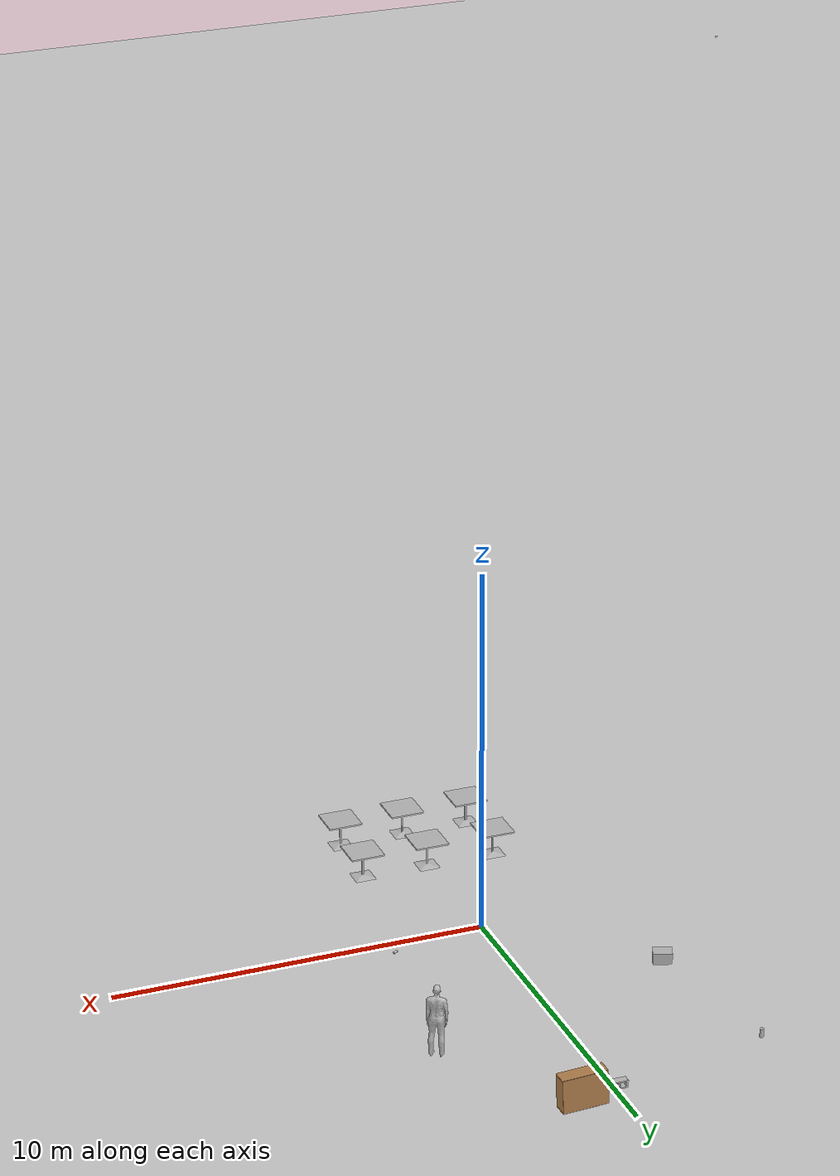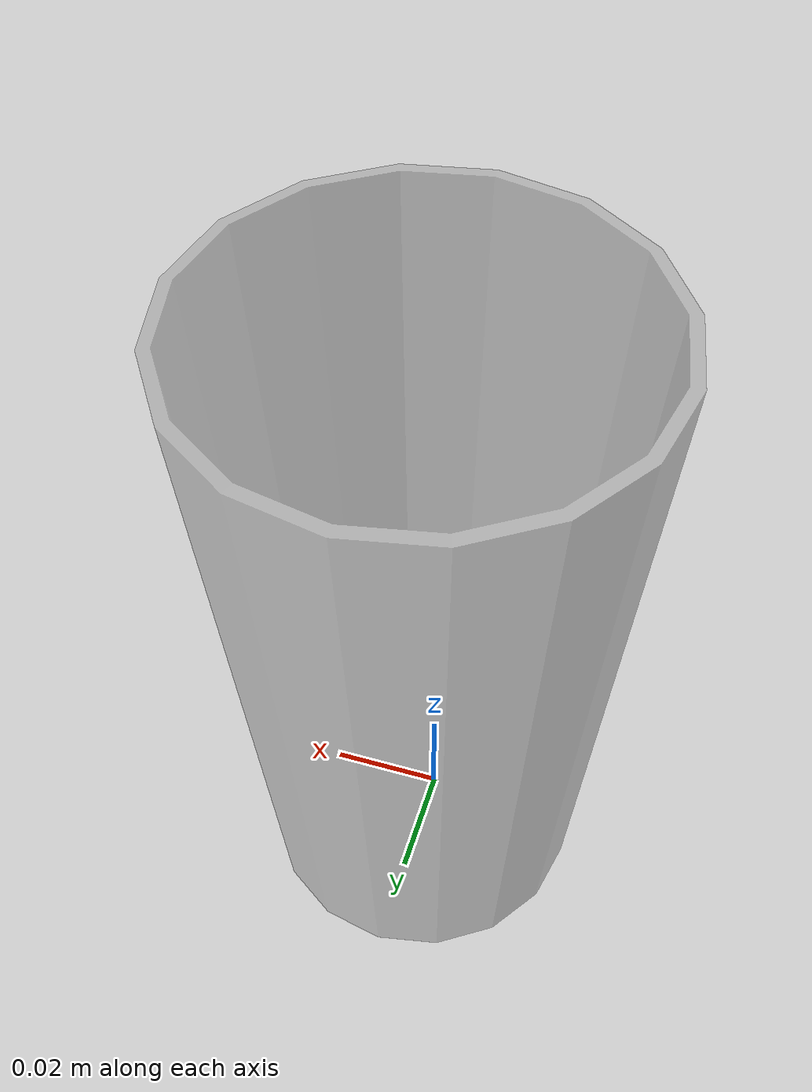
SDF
<sdf version="1.6">
 <world name="default">
  <light name="sun" type="directional">
   <pose>0 0 15 0 -0 0</pose>
   <diffuse>0.8 0.8 0.8 1</diffuse>
   <specular>0.2 0.2 0.2 1</specular>
   <attenuation>
    <range>1000</range>
    <constant>0.9</constant>
    <linear>0.01</linear>
    <quadratic>0.001</quadratic>
   </attenuation>
   <direction>-0.5 0.1 -0.9</direction>
  </light>
  <model name="ground_plane">
   <static>1</static>
   <link name="link">
    <collision name="collision">
     <geometry><plane><normal>0 0 1</normal><size>100 100</size></plane></geometry>
     <surface><friction><ode><mu>100</mu><mu2>50</mu2></ode></friction></surface>
    </collision>
    <visual name="visual">
     <transparency>1</transparency>
     <cast_shadows>0</cast_shadows>
     <geometry><plane><normal>0 0 1</normal><size>100 100</size></plane></geometry>
     <material>
      <script><uri>file://media/materials/scripts/gazebo.material</uri><name>Gazebo/Grey</name></script>
     </material>
    </visual>
   </link>
  </model>
  <gravity>0 0 -9.8</gravity>
  <magnetic_field>6e-06 2.3e-05 -4.2e-05</magnetic_field>
  <atmosphere type="adiabatic"/>
  <physics name="default_physics" default="0" type="ode">
   <max_step_size>0.001</max_step_size>
   <real_time_factor>1</real_time_factor>
   <real_time_update_rate>1000</real_time_update_rate>
  </physics>
  <scene><ambient>0.4 0.4 0.4 1</ambient><background>0.7 0.7 0.7 1</background><shadows>1</shadows></scene>
  <audio><device>default</device></audio>
  <spherical_coordinates>
   <surface_model>EARTH_WGS84</surface_model>
   <latitude_deg>0</latitude_deg>
   <longitude_deg>0</longitude_deg>
   <elevation>0</elevation>
   <heading_deg>0</heading_deg>
  </spherical_coordinates>
  <model name="beer">
   <link name="link">
    <pose>0 0 0.115 0 -0 0</pose>
    <inertial>
     <mass>0.39</mass>
     <inertia><ixx>0.00058</ixx><ixy>0</ixy><ixz>0</ixz><iyy>0.00058</iyy><iyz>0</iyz><izz>0.00019</izz></inertia>
    </inertial>
    <collision name="collision">
     <geometry><cylinder><radius>0.055</radius><length>0.23</length></cylinder></geometry>
    </collision>
    <visual name="visual">
     <geometry><cylinder><radius>0.055</radius><length>0.23</length></cylinder></geometry>
     <material>
      <script>
       <uri>model://beer/materials/scripts</uri>
       <uri>model://beer/materials/textures</uri>
       <name>Beer/Diffuse</name>
      </script>
     </material>
    </visual>
   </link>
   <pose>-4.3036 7.81842 0.087671 2.8e-05 0.000106 -0.175584</pose>
  </model>
  <model name="cardboard_box">
   <pose>-3.55714 3.43937 0.236665 0 0 -0.360823</pose>
   <link name="link">
    <inertial>
     <mass>2</mass>
     <inertia>
      <ixx>0.0416667</ixx>
      <ixy>0</ixy>
      <ixz>0</ixz>
      <iyy>0.0566667</iyy>
      <iyz>0</iyz>
      <izz>0.0683333</izz>
     </inertia>
    </inertial>
    <collision name="collision">
     <geometry><box><size>0.5 0.4 0.3</size></box></geometry>
     <surface>
      <friction><ode><mu>1</mu><mu2>1</mu2></ode></friction>
      <contact><ode><kp>1e+07</kp><kd>1</kd><min_depth>0.001</min_depth><max_vel>0.1</max_vel></ode></contact>
     </surface>
    </collision>
    <visual name="visual">
     <pose>0 0 -0.15 0 -0 0</pose>
     <geometry>
      <mesh><uri>model://cardboard_box/meshes/cardboard_box.dae</uri><scale>1.25932 1.00745 0.755591</scale></mesh>
     </geometry>
    </visual>
   </link>
  </model>
  <model name="cinder_block">
   <link name="link">
    <inertial>
     <pose>0 0 0.1016 0 -0 0</pose>
     <mass>5</mass>
     <inertia>
      <ixx>0.028705</ixx>
      <ixy>0</ixy>
      <iyy>0.073708</iyy>
      <ixz>0</ixz>
      <iyz>0</iyz>
      <izz>0.06908</izz>
     </inertia>
    </inertial>
    <visual name="visual">
     <geometry><mesh><uri>model://cinder_block/meshes/cinder_block.dae</uri></mesh></geometry>
    </visual>
    <collision name="left">
     <pose>0 -0.08465 0.1016 0 -0 0</pose>
     <geometry><box><size>0.43495 0.0339 0.2032</size></box></geometry>
     <surface>
      <contact><ode><max_vel>0.1</max_vel><min_depth>0.001</min_depth></ode></contact>
      <friction><ode><mu>1</mu><mu2>1</mu2></ode></friction>
     </surface>
    </collision>
    <collision name="right">
     <pose>0 0.08465 0.1016 0 -0 0</pose>
     <geometry><box><size>0.43495 0.0339 0.2032</size></box></geometry>
     <surface>
      <contact><ode><max_vel>0.1</max_vel><min_depth>0.001</min_depth></ode></contact>
      <friction><ode><mu>1</mu><mu2>1</mu2></ode></friction>
     </surface>
    </collision>
    <collision name="front">
     <pose>0.18625 0 0.1016 0 -0 0</pose>
     <geometry><box><size>0.0339 0.1354 0.203</size></box></geometry>
     <surface>
      <contact><ode><max_vel>0.1</max_vel><min_depth>0.001</min_depth></ode></contact>
      <friction><ode><mu>1</mu><mu2>1</mu2></ode></friction>
     </surface>
    </collision>
    <collision name="middle">
     <pose>0 0 0.1016 0 -0 0</pose>
     <geometry><box><size>0.0339 0.1354 0.203</size></box></geometry>
     <surface>
      <contact><ode><max_vel>0.1</max_vel><min_depth>0.001</min_depth></ode></contact>
      <friction><ode><mu>1</mu><mu2>1</mu2></ode></friction>
     </surface>
    </collision>
    <collision name="back">
     <pose>-0.18625 0 0.1016 0 -0 0</pose>
     <geometry><box><size>0.0339 0.1354 0.203</size></box></geometry>
     <surface>
      <contact><ode><max_vel>0.1</max_vel><min_depth>0.001</min_depth></ode></contact>
      <friction><ode><mu>1</mu><mu2>1</mu2></ode></friction>
     </surface>
    </collision>
   </link>
   <pose>-0.072492 8.83217 0.188279 1.5706 -0 -4e-06</pose>
  </model>
  <model name="cafe_table">
   <static>1</static>
   <link name="link">
    <collision name="surface">
     <pose>0 0 0.755 0 -0 0</pose>
     <geometry><box><size>0.913 0.913 0.04</size></box></geometry>
    </collision>
    <collision name="column">
     <pose>0 0 0.37 0 -0 0</pose>
     <geometry><box><size>0.042 0.042 0.74</size></box></geometry>
    </collision>
    <collision name="base">
     <pose>0 0 0.02 0 -0 0</pose>
     <geometry><box><size>0.56 0.56 0.04</size></box></geometry>
    </collision>
    <visual name="visual">
     <geometry><mesh><uri>model://cafe_table/meshes/cafe_table.dae</uri></mesh></geometry>
    </visual>
   </link>
   <pose>-1.75721 -3.68952 0 0 -0 0</pose>
  </model>
  <model name="cafe_table_clone">
   <static>1</static>
   <link name="link">
    <collision name="surface">
     <pose>0 0 0.755 0 -0 0</pose>
     <geometry><box><size>0.913 0.913 0.04</size></box></geometry>
    </collision>
    <collision name="column">
     <pose>0 0 0.37 0 -0 0</pose>
     <geometry><box><size>0.042 0.042 0.74</size></box></geometry>
    </collision>
    <collision name="base">
     <pose>0 0 0.02 0 -0 0</pose>
     <geometry><box><size>0.56 0.56 0.04</size></box></geometry>
    </collision>
    <visual name="visual">
     <geometry><mesh><uri>model://cafe_table/meshes/cafe_table.dae</uri></mesh></geometry>
    </visual>
   </link>
   <pose>-1.74835 -5.63814 0 0 -0 0</pose>
  </model>
  <model name="cafe_table_clone_0">
   <static>1</static>
   <link name="link">
    <collision name="surface">
     <pose>0 0 0.755 0 -0 0</pose>
     <geometry><box><size>0.913 0.913 0.04</size></box></geometry>
    </collision>
    <collision name="column">
     <pose>0 0 0.37 0 -0 0</pose>
     <geometry><box><size>0.042 0.042 0.74</size></box></geometry>
    </collision>
    <collision name="base">
     <pose>0 0 0.02 0 -0 0</pose>
     <geometry><box><size>0.56 0.56 0.04</size></box></geometry>
    </collision>
    <visual name="visual">
     <geometry><mesh><uri>model://cafe_table/meshes/cafe_table.dae</uri></mesh></geometry>
    </visual>
   </link>
   <pose>0.109431 -3.69878 0 0 -0 0</pose>
  </model>
  <model name="cafe_table_clone_1">
   <static>1</static>
   <link name="link">
    <collision name="surface">
     <pose>0 0 0.755 0 -0 0</pose>
     <geometry><box><size>0.913 0.913 0.04</size></box></geometry>
    </collision>
    <collision name="column">
     <pose>0 0 0.37 0 -0 0</pose>
     <geometry><box><size>0.042 0.042 0.74</size></box></geometry>
    </collision>
    <collision name="base">
     <pose>0 0 0.02 0 -0 0</pose>
     <geometry><box><size>0.56 0.56 0.04</size></box></geometry>
    </collision>
    <visual name="visual">
     <geometry><mesh><uri>model://cafe_table/meshes/cafe_table.dae</uri></mesh></geometry>
    </visual>
   </link>
   <pose>0.080445 -5.63415 0 0 -0 0</pose>
  </model>
  <model name="cafe_table_clone_2">
   <static>1</static>
   <link name="link">
    <collision name="surface">
     <pose>0 0 0.755 0 -0 0</pose>
     <geometry><box><size>0.913 0.913 0.04</size></box></geometry>
    </collision>
    <collision name="column">
     <pose>0 0 0.37 0 -0 0</pose>
     <geometry><box><size>0.042 0.042 0.74</size></box></geometry>
    </collision>
    <collision name="base">
     <pose>0 0 0.02 0 -0 0</pose>
     <geometry><box><size>0.56 0.56 0.04</size></box></geometry>
    </collision>
    <visual name="visual">
     <geometry><mesh><uri>model://cafe_table/meshes/cafe_table.dae</uri></mesh></geometry>
    </visual>
   </link>
   <pose>1.91052 -3.73427 0 0 -0 0</pose>
  </model>
  <model name="cafe_table_clone_3">
   <static>1</static>
   <link name="link">
    <collision name="surface">
     <pose>0 0 0.755 0 -0 0</pose>
     <geometry><box><size>0.913 0.913 0.04</size></box></geometry>
    </collision>
    <collision name="column">
     <pose>0 0 0.37 0 -0 0</pose>
     <geometry><box><size>0.042 0.042 0.74</size></box></geometry>
    </collision>
    <collision name="base">
     <pose>0 0 0.02 0 -0 0</pose>
     <geometry><box><size>0.56 0.56 0.04</size></box></geometry>
    </collision>
    <visual name="visual">
     <geometry><mesh><uri>model://cafe_table/meshes/cafe_table.dae</uri></mesh></geometry>
    </visual>
   </link>
   <pose>1.85434 -5.60225 0 0 -0 0</pose>
  </model>
  <model name="coke_can">
   <link name="link">
    <inertial>
     <pose>-0.01 -0.012 0.15 0 -0 0</pose>
     <mass>0.39</mass>
     <inertia><ixx>0.00058</ixx><ixy>0</ixy><ixz>0</ixz><iyy>0.00058</iyy><iyz>0</iyz><izz>0.00019</izz></inertia>
    </inertial>
    <collision name="collision">
     <pose>0 0 -0.46 0 -0 0</pose>
     <geometry><mesh><uri>model://coke_can/meshes/coke_can.dae</uri></mesh></geometry>
     <surface>
      <friction><ode><mu>1</mu><mu2>1</mu2></ode></friction>
      <contact><ode><kp>1e+07</kp><kd>1</kd><min_depth>0.001</min_depth><max_vel>0.1</max_vel></ode></contact>
     </surface>
    </collision>
    <visual name="visual">
     <pose>0 0 -0.46 0 -0 0</pose>
     <geometry><mesh><uri>model://coke_can/meshes/coke_can.dae</uri></mesh></geometry>
    </visual>
   </link>
   <pose>2.47319 0.6036 0.187231 1.56205 -1.24774 -1.07134</pose>
  </model>
  <model name="person_standing">
   <link name="link">
    <inertial>
     <pose>0 -0.1 0.95 0 -0 0</pose>
     <mass>80</mass>
     <inertia><ixx>24.88</ixx><ixy>0</ixy><ixz>0</ixz><iyy>25.73</iyy><iyz>0</iyz><izz>2.48</izz></inertia>
    </inertial>
    <collision name="bottom">
     <pose>0 -0.1 0.01 0 -0 0</pose>
     <geometry><box><size>0.5 0.35 0.02</size></box></geometry>
    </collision>
    <collision name="person">
     <pose>0 0 0.02 0.04 -0 0</pose>
     <geometry><mesh><uri>model://person_standing/meshes/standing.dae</uri></mesh></geometry>
    </collision>
    <visual name="visual">
     <pose>0 0 0.02 0.04 -0 0</pose>
     <geometry><mesh><uri>model://person_standing/meshes/standing.dae</uri></mesh></geometry>
    </visual>
   </link>
   <pose>3.51581 5.79061 0.087665 1e-06 -1e-06 -0.546707</pose>
  </model>
  <model name="plastic_cup">
   <link name="link">
    <pose>0 0 0.065 0 -0 0</pose>
    <inertial>
     <mass>0.0599</mass>
     <inertia>
      <ixx>0.000302896</ixx>
      <ixy>0</ixy>
      <ixz>0</ixz>
      <iyy>0.000302896</iyy>
      <iyz>0</iyz>
      <izz>3.28764e-05</izz>
     </inertia>
    </inertial>
    <collision name="collision">
     <geometry><mesh><uri>model://plastic_cup/meshes/plastic_cup.dae</uri></mesh></geometry>
     <surface>
      <contact>
       <poissons_ratio>0.35</poissons_ratio>
       <elastic_modulus>3.10264e+09</elastic_modulus>
       <ode><kp>100000</kp><kd>100</kd><max_vel>100</max_vel><min_depth>0.001</min_depth></ode>
      </contact>
      <friction>
       <torsional>
        <coefficient>1</coefficient>
        <use_patch_radius>0</use_patch_radius>
        <surface_radius>0.01</surface_radius>
       </torsional>
      </friction>
     </surface>
    </collision>
    <visual name="visual">
     <geometry><mesh><uri>model://plastic_cup/meshes/plastic_cup.dae</uri></mesh></geometry>
     <material>
      <script><uri>file://media/materials/scripts/gazebo.material</uri><name>Gazebo/GreyTransparent</name></script>
     </material>
    </visual>
   </link>
  </model>
  <model name="plastic_cup_0">
   <link name="link">
    <pose>0 0 0.065 0 -0 0</pose>
    <inertial>
     <mass>0.0599</mass>
     <inertia>
      <ixx>0.000302896</ixx>
      <ixy>0</ixy>
      <ixz>0</ixz>
      <iyy>0.000302896</iyy>
      <iyz>0</iyz>
      <izz>3.28764e-05</izz>
     </inertia>
    </inertial>
    <collision name="collision">
     <geometry><mesh><uri>model://plastic_cup/meshes/plastic_cup.dae</uri></mesh></geometry>
     <surface>
      <contact>
       <poissons_ratio>0.35</poissons_ratio>
       <elastic_modulus>3.10264e+09</elastic_modulus>
       <ode><kp>100000</kp><kd>100</kd><max_vel>100</max_vel><min_depth>0.001</min_depth></ode>
      </contact>
      <friction>
       <torsional>
        <coefficient>1</coefficient>
        <use_patch_radius>0</use_patch_radius>
        <surface_radius>0.01</surface_radius>
       </torsional>
      </friction>
     </surface>
    </collision>
    <visual name="visual">
     <geometry><mesh><uri>model://plastic_cup/meshes/plastic_cup.dae</uri></mesh></geometry>
     <material>
      <script><uri>file://media/materials/scripts/gazebo.material</uri><name>Gazebo/GreyTransparent</name></script>
     </material>
    </visual>
   </link>
  </model>
  <model name="plastic_cup_1">
   <link name="link">
    <pose>0 0 0.065 0 -0 0</pose>
    <inertial>
     <mass>0.0599</mass>
     <inertia>
      <ixx>0.000302896</ixx>
      <ixy>0</ixy>
      <ixz>0</ixz>
      <iyy>0.000302896</iyy>
      <iyz>0</iyz>
      <izz>3.28764e-05</izz>
     </inertia>
    </inertial>
    <collision name="collision">
     <geometry><mesh><uri>model://plastic_cup/meshes/plastic_cup.dae</uri></mesh></geometry>
     <surface>
      <contact>
       <poissons_ratio>0.35</poissons_ratio>
       <elastic_modulus>3.10264e+09</elastic_modulus>
       <ode><kp>100000</kp><kd>100</kd><max_vel>100</max_vel><min_depth>0.001</min_depth></ode>
      </contact>
      <friction>
       <torsional>
        <coefficient>1</coefficient>
        <use_patch_radius>0</use_patch_radius>
        <surface_radius>0.01</surface_radius>
       </torsional>
      </friction>
     </surface>
    </collision>
    <visual name="visual">
     <geometry><mesh><uri>model://plastic_cup/meshes/plastic_cup.dae</uri></mesh></geometry>
     <material>
      <script><uri>file://media/materials/scripts/gazebo.material</uri><name>Gazebo/GreyTransparent</name></script>
     </material>
    </visual>
   </link>
   <pose>-37.1762 -67.0986 0.018778 1.49594 0.195802 2.2562</pose>
  </model>
  <model name="plastic_cup_2">
   <link name="link">
    <pose>0 0 0.065 0 -0 0</pose>
    <inertial>
     <mass>0.0599</mass>
     <inertia>
      <ixx>0.000302896</ixx>
      <ixy>0</ixy>
      <ixz>0</ixz>
      <iyy>0.000302896</iyy>
      <iyz>0</iyz>
      <izz>3.28764e-05</izz>
     </inertia>
    </inertial>
    <collision name="collision">
     <geometry><mesh><uri>model://plastic_cup/meshes/plastic_cup.dae</uri></mesh></geometry>
     <surface>
      <contact>
       <poissons_ratio>0.35</poissons_ratio>
       <elastic_modulus>3.10264e+09</elastic_modulus>
       <ode><kp>100000</kp><kd>100</kd><max_vel>100</max_vel><min_depth>0.001</min_depth></ode>
      </contact>
      <friction>
       <torsional>
        <coefficient>1</coefficient>
        <use_patch_radius>0</use_patch_radius>
        <surface_radius>0.01</surface_radius>
       </torsional>
      </friction>
     </surface>
    </collision>
    <visual name="visual">
     <geometry><mesh><uri>model://plastic_cup/meshes/plastic_cup.dae</uri></mesh></geometry>
     <material>
      <script><uri>file://media/materials/scripts/gazebo.material</uri><name>Gazebo/GreyTransparent</name></script>
     </material>
    </visual>
   </link>
  </model>
  <model name="bookshelf">
   <static>1</static>
   <link name="link">
    <inertial><mass>1</mass></inertial>
    <collision name="back">
     <pose>0 0.005 0.6 0 -0 0</pose>
     <geometry><box><size>0.9 0.01 1.2</size></box></geometry>
    </collision>
    <visual name="visual1">
     <pose>0 0.005 0.6 0 -0 0</pose>
     <geometry><box><size>0.9 0.01 1.2</size></box></geometry>
     <material>
      <script><uri>file://media/materials/scripts/gazebo.material</uri><name>Gazebo/Wood</name></script>
     </material>
    </visual>
    <collision name="left_side">
     <pose>0.45 -0.195 0.6 0 -0 0</pose>
     <geometry><box><size>0.02 0.4 1.2</size></box></geometry>
    </collision>
    <visual name="visual2">
     <pose>0.45 -0.195 0.6 0 -0 0</pose>
     <geometry><box><size>0.02 0.4 1.2</size></box></geometry>
     <material>
      <script><uri>file://media/materials/scripts/gazebo.material</uri><name>Gazebo/Wood</name></script>
     </material>
    </visual>
    <collision name="right_side">
     <pose>-0.45 -0.195 0.6 0 -0 0</pose>
     <geometry><box><size>0.02 0.4 1.2</size></box></geometry>
    </collision>
    <visual name="visual3">
     <pose>-0.45 -0.195 0.6 0 -0 0</pose>
     <geometry><box><size>0.02 0.4 1.2</size></box></geometry>
     <material>
      <script><uri>file://media/materials/scripts/gazebo.material</uri><name>Gazebo/Wood</name></script>
     </material>
    </visual>
    <collision name="bottom">
     <pose>0 -0.195 0.03 0 -0 0</pose>
     <geometry><box><size>0.88 0.4 0.06</size></box></geometry>
    </collision>
    <visual name="visual4">
     <pose>0 -0.195 0.03 0 -0 0</pose>
     <geometry><box><size>0.88 0.4 0.06</size></box></geometry>
     <material>
      <script><uri>file://media/materials/scripts/gazebo.material</uri><name>Gazebo/Wood</name></script>
     </material>
    </visual>
    <collision name="top">
     <pose>0 -0.195 1.19 0 -0 0</pose>
     <geometry><box><size>0.88 0.4 0.02</size></box></geometry>
    </collision>
    <visual name="visual5">
     <pose>0 -0.195 1.19 0 -0 0</pose>
     <geometry><box><size>0.88 0.4 0.02</size></box></geometry>
     <material>
      <script><uri>file://media/materials/scripts/gazebo.material</uri><name>Gazebo/Wood</name></script>
     </material>
    </visual>
    <collision name="low_shelf">
     <pose>0 -0.195 0.43 0 -0 0</pose>
     <geometry><box><size>0.88 0.4 0.02</size></box></geometry>
    </collision>
    <visual name="visual6">
     <pose>0 -0.195 0.43 0 -0 0</pose>
     <geometry><box><size>0.88 0.4 0.02</size></box></geometry>
     <material>
      <script><uri>file://media/materials/scripts/gazebo.material</uri><name>Gazebo/Wood</name></script>
     </material>
    </visual>
    <collision name="high_shelf">
     <pose>0 -0.195 0.8 0 -0 0</pose>
     <geometry><box><size>0.88 0.4 0.02</size></box></geometry>
    </collision>
    <visual name="visual7">
     <pose>0 -0.195 0.8 0 -0 0</pose>
     <geometry><box><size>0.88 0.4 0.02</size></box></geometry>
     <material>
      <script><uri>file://media/materials/scripts/gazebo.material</uri><name>Gazebo/Wood</name></script>
     </material>
    </visual>
   </link>
   <pose>1.76929 9.63754 0.691553 0 -1.5299 0.016217</pose>
  </model>
 </world>
</sdf>
